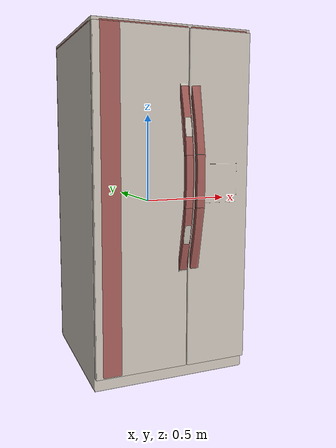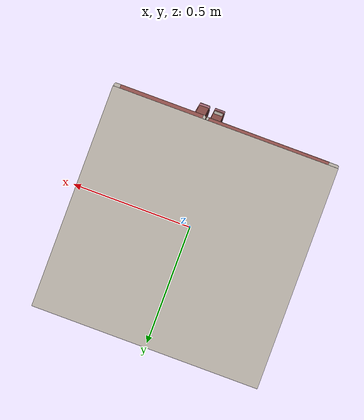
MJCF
<?xml version='1.0' encoding='UTF-8'?>
<mujoco model="model">
  <option timestep="0.002" gravity="0.0 0.0 -9.81"/>
  <compiler angle="radian"/>
  <asset>
    <mesh file="visuals/freezer_door.obj" name="freezer_door_vis"/>
    <mesh file="visuals/freezer_drawer0.obj" name="freezer_drawer0_vis"/>
    <mesh file="visuals/freezer_drawer1.obj" name="freezer_drawer1_vis"/>
    <mesh file="visuals/freezer_drawer2.obj" name="freezer_drawer2_vis"/>
    <mesh file="visuals/fridge_door.obj" name="fridge_door_vis"/>
    <mesh file="visuals/fridge_drawer0.obj" name="fridge_drawer0_vis"/>
    <mesh file="visuals/fridge_drawer1.obj" name="fridge_drawer1_vis"/>
    <mesh file="visuals/fridge_drawer2.obj" name="fridge_drawer2_vis"/>
    <mesh file="visuals/fridge_drawer3.obj" name="fridge_drawer3_vis"/>
    <mesh file="visuals/fridge_drawer4.obj" name="fridge_drawer4_vis"/>
    <mesh file="visuals/Body001.obj" name="Body001_vis"/>
    <mesh file="visuals/Body001_Clear.obj" name="Body001_Clear_vis"/>
    <texture file="visuals/T_BC001.png" name="Body001_material" type="2d"/>
    <material name="Body001_material" rgba="1 1 1 1.0" texture="Body001_material" shininess="0.4472135901451111" specular="1"/>
    <texture file="visuals/T_BC001.png" name="freezer_door_material" type="2d"/>
    <material name="freezer_door_material" rgba="1 1 1 1.0" texture="freezer_door_material" shininess="0.4472135901451111" specular="1"/>
    <texture file="visuals/T_BC001.png" name="freezer_drawer0_material" type="2d"/>
    <material name="freezer_drawer0_material" rgba="1 1 1 1.0" texture="freezer_drawer0_material" shininess="0.4472135901451111" specular="0.3103448502657381"/>
    <texture file="visuals/T_BC001.png" name="freezer_drawer1_material" type="2d"/>
    <material name="freezer_drawer1_material" rgba="1 1 1 1.0" texture="freezer_drawer1_material" shininess="0.4472135901451111" specular="0.3103448502657381"/>
    <texture file="visuals/T_BC001.png" name="freezer_drawer2_material" type="2d"/>
    <material name="freezer_drawer2_material" rgba="1 1 1 1.0" texture="freezer_drawer2_material" shininess="0.4472135901451111" specular="0.3103448502657381"/>
    <texture file="visuals/T_BC001.png" name="fridge_door_material" type="2d"/>
    <material name="fridge_door_material" rgba="1 1 1 1.0" texture="fridge_door_material" shininess="0.4472135901451111" specular="1"/>
    <material name="fridge_drawer0_material" rgba="1.0 1.0 1.0 0.2653976380825043" shininess="0.4472135901451111" specular="0.3103448502657381"/>
    <material name="fridge_drawer1_material" rgba="1.0 1.0 1.0 0.2653976380825043" shininess="0.4472135901451111" specular="0.3103448502657381"/>
    <material name="fridge_drawer2_material" rgba="1.0 1.0 1.0 0.2653976380825043" shininess="0.4472135901451111" specular="0.3103448502657381"/>
    <material name="fridge_drawer3_material" rgba="1.0 1.0 1.0 0.2653976380825043" shininess="0.4472135901451111" specular="0.3103448502657381"/>
    <material name="fridge_drawer4_material" rgba="1.0 1.0 1.0 0.2653976380825043" shininess="0.4472135901451111" specular="0.3103448502657381"/>
    <material name="Body001_Clear_material" rgba="1.0 1.0 1.0 0.2653976380825043" shininess="0.4472135901451111" specular="0.3103448502657381"/>
  </asset>
  <default>
    <default class="visual">
      <geom conaffinity="0" contype="0" group="1" type="mesh"/>
    </default>
    <default class="collision">
      <geom group="0" rgba="0.5 0 0 0.5"/>
    </default>
    <default class="spawn">
      <geom group="0" rgba="1 1 1 0.5" contype="0" conaffinity="0"/>
      <site group="0" rgba="1 1 1 0.5"/>
    </default>
    <default class="region">
      <geom group="1" conaffinity="0" contype="0" rgba="0 1 0 0"/>
    </default>
  </default>
  <worldbody>
    <body>
      <body name="object">
        <geom mesh="Body001_vis" type="mesh" solimp="0.998 0.998 0.001" solref="0.001 1" friction="0.95 0.3 0.1" class="visual" material="Body001_material"/>
        <geom class="collision" type="box" pos="-0.00000003 0.07244694 -0.87347156" size="0.4304637610912323 0.3956150412559509 0.0588507205247879" quat="1.0 0.0 0.0 0.0"/>
        <geom class="collision" type="box" pos="-0.40861815 0.07244785 0.03347566" size="0.021845141425728798 0.395599901676178 0.8861163258552551" quat="1.0 0.0 0.0 0.0"/>
        <geom class="collision" type="box" pos="0.41922861 0.07246298 0.03347566" size="0.011235269717872143 0.39558467268943787 0.8861758708953857" quat="1.0 0.0 0.0 0.0"/>
        <geom class="collision" type="box" pos="0.00422757 0.44963735 0.03726095" size="0.39516299962997437 0.018424177542328835 0.8771956562995911" quat="1.0 0.0 0.0 0.0"/>
        <geom class="collision" type="box" pos="-0.00005763 0.06491915 0.92715174" size="0.42882394790649414 0.40309831500053406 0.005167157854884863" quat="1.0 0.0 0.0 0.0"/>
        <geom class="collision" type="box" pos="0.06976730 0.07117526 0.03347566" size="0.007711742073297501 0.394353449344635 0.8863667249679565" quat="1.0 0.0 0.0 0.0"/>
        <geom class="collision" type="box" pos="-0.16336530 0.08476427 0.17532346" size="0.23660500347614288 0.3807418942451477 0.003616984933614731" quat="1.0 0.0 0.0 0.0"/>
        <geom class="collision" type="box" pos="-0.16336530 0.08476427 -0.09813295" size="0.23661182820796967 0.38075974583625793 0.040179990231990814" quat="1.0 0.0 0.0 0.0"/>
        <geom class="collision" type="box" pos="0.25140142 0.05892735 -0.13335752" size="0.15414109826087952 0.3807351887226105 0.011884043924510479" quat="1.0 0.0 0.0 0.0"/>
        <geom class="collision" type="box" pos="-0.16960494 0.05646115 0.41550559" size="0.21129442751407623 0.3519227206707001 0.01067923754453659" quat="1.0 0.0 0.0 0.0"/>
        <geom class="collision" type="box" pos="0.24783821 0.10986395 0.54615122" size="0.15461844205856323 0.2929384708404541 0.004145659971982241" quat="1.0 0.0 0.0 0.0"/>
        <geom class="collision" type="box" pos="0.25126901 0.10986399 0.20493993" size="0.15199317038059235 0.2910866439342499 0.004145502578467131" quat="1.0 0.0 0.0 0.0"/>
        <geom class="collision" type="box" pos="-0.00354902 0.07651708 0.89048517" size="0.42538413405418396 0.38581550121307373 0.032244957983493805" quat="1.0 0.0 0.0 0.0"/>
        <geom class="collision" type="box" pos="-0.17521077 -0.00168094 -0.35653734" size="0.20460020005702972 0.3087306618690491 0.0006429601344279945" quat="1.0 0.0 0.0 0.0"/>
        <geom class="collision" type="box" pos="-0.17521077 -0.00168094 -0.57321596" size="0.20460020005702972 0.30873045325279236 0.0001045343087753281" quat="1.0 0.0 0.0 0.0"/>
        <geom class="collision" type="box" pos="0.25022644 -0.00168094 -0.59977818" size="0.15879812836647034 0.30873170495033264 0.0016550397267565131" quat="1.0 0.0 0.0 0.0"/>
        <geom class="collision" type="box" pos="0.25022644 -0.00168094 -0.38382816" size="0.1587982475757599 0.30873173475265503 0.001671178499236703" quat="1.0 0.0 0.0 0.0"/>
        <geom class="collision" type="box" pos="-0.17554763 -0.04852468 -0.81352317" size="0.2269284576177597 0.29276221990585327 0.024953356012701988" quat="1.0 0.0 0.0 0.0"/>
        <body name="freezer_door">
          <joint axis="0.0 0.0 1.0" pos="0.41125858 -0.37849856 0.02739461" limited="true" name="freezer_door_joint" range="0.0 1.5707963267948966" type="hinge" damping="1" frictionloss="1" armature=".01" stiffness="0.05"/>
          <geom mesh="freezer_door_vis" type="mesh" solimp="0.998 0.998 0.001" solref="0.001 1" friction="0.95 0.3 0.1" class="visual" material="freezer_door_material"/>
          <geom class="collision" type="box" pos="0.10799358 -0.42213989 0.45491844" size="0.020545627921819687 0.015073212794959545 0.17384988069534302" quat="0.9959166646003723 -0.09027764201164246 5.812459611657523e-18 3.734767511574259e-19" name="freezer_door_handle_1"/>
          <geom class="collision" type="box" pos="0.10799358 -0.42104629 -0.15091255" size="0.020545627921819687 0.015073212794959545 0.16665861010551453" quat="0.9952443242073059 0.09741028398275375 5.640280312793385e-18 1.4530146072651087e-18" name="freezer_door_handle_2"/>
          <geom class="collision" type="box" pos="0.10799358 -0.45493445 0.14793020" size="0.020545581355690956 0.015073142945766449 0.13386665284633636" quat="1.0 0.0 0.0 0.0" name="freezer_door_handle_main"/>
          <geom class="collision" type="box" pos="0.24725594 -0.37833334 0.03077910" size="0.15779338777065277 0.008189450018107891 0.8890061378479004" quat="1.0 0.0 0.0 0.0" name="freezer_door_main"/>
        </body>
        <body name="freezer_drawer0">
          <geom class="region" name="reg_freezer_drawer0" type="box" pos="0.250738735 -0.007979545000000005 -0.6950289350000001" size="0.117325265 0.27091784500000005 0.06638477500000001"/>
          <joint axis="0.0 -1.0 0.0" pos="0.25054911 -0.00831169 -0.70767558" limited="true" name="freezer_drawer0_joint" range="0.0 0.45" type="slide" damping="1" frictionloss="1" armature=".01" stiffness="0.05"/>
          <geom mesh="freezer_drawer0_vis" type="mesh" solimp="0.998 0.998 0.001" solref="0.001 1" friction="0.95 0.3 0.1" class="visual" material="freezer_drawer0_material"/>
          <geom class="collision" type="box" pos="0.25229502 -0.01856448 -0.78834569" size="0.13306231796741486 0.29579514265060425 0.022255269810557365" quat="1.0 0.0 0.0 0.0"/>
          <geom class="collision" type="box" pos="0.37864539 -0.00891570 -0.70721042" size="0.0055981045588850975 0.3054431974887848 0.10118091851472855" quat="1.0 0.0 0.0 0.0"/>
          <geom class="collision" type="box" pos="0.12072334 -0.00891568 -0.70721042" size="0.00732760364189744 0.3054424524307251 0.10118067264556885" quat="1.0 0.0 0.0 0.0"/>
          <geom class="collision" type="box" pos="0.24773729 -0.29905850 -0.72060519" size="0.13345694541931152 0.014037924818694592 0.08960815519094467" quat="1.0 0.0 0.0 0.0"/>
          <geom class="collision" type="box" pos="0.24773729 0.28295066 -0.70721042" size="0.1334570050239563 0.013863825239241123 0.10118020325899124" quat="1.0 0.0 0.0 0.0"/>
          <geom class="collision" type="box" pos="0.16804263 -0.29833872 -0.63085544" size="0.05193275585770607 0.012029588222503662 0.009430548176169395" quat="0.9891068339347839 -3.418605705118806e-15 0.14719928801059723 1.9777544935095648e-08"/>
          <geom class="collision" type="box" pos="0.33302104 -0.29833872 -0.63245958" size="0.05193275585770607 0.012029588222503662 0.009430548176169395" quat="0.985614538192749 -5.7940937238257304e-15 -0.16900873184204102 -2.2707819624656622e-08"/>
        </body>
        <body name="freezer_drawer1">
          <geom class="region" name="reg_freezer_drawer1" type="box" pos="0.250738735 -0.007979545000000005 -0.47893213" size="0.117325265 0.27091784500000005 0.06638476000000001"/>
          <joint axis="0.0 -1.0 0.0" pos="0.25054911 -0.00796666 -0.49253732" limited="true" name="freezer_drawer1_joint" range="0.0 0.45" type="slide" damping="1" frictionloss="1" armature=".01" stiffness="0.05"/>
          <geom mesh="freezer_drawer1_vis" type="mesh" solimp="0.998 0.998 0.001" solref="0.001 1" friction="0.95 0.3 0.1" class="visual" material="freezer_drawer1_material"/>
          <geom class="collision" type="box" pos="0.25035903 -0.01856448 -0.57326460" size="0.13429798185825348 0.29579707980155945 0.022312471643090248" quat="1.0 0.0 0.0 0.0"/>
          <geom class="collision" type="box" pos="0.37939233 -0.00891570 -0.49036545" size="0.006345077883452177 0.30544513463974 0.10118143260478973" quat="1.0 0.0 0.0 0.0"/>
          <geom class="collision" type="box" pos="0.12147030 -0.00891568 -0.49036545" size="0.006580587010830641 0.3054443895816803 0.10118119418621063" quat="1.0 0.0 0.0 0.0"/>
          <geom class="collision" type="box" pos="0.24961606 -0.29905850 -0.50651467" size="0.1333988755941391 0.014037911780178547 0.08765426278114319" quat="1.0 0.0 0.0 0.0"/>
          <geom class="collision" type="box" pos="0.24961606 0.28295078 -0.49036545" size="0.13340258598327637 0.013863880187273026 0.10118072479963303" quat="1.0 0.0 0.0 0.0"/>
          <geom class="collision" type="box" pos="0.33302104 -0.29833872 -0.41739845" size="0.05193275585770607 0.012029588222503662 0.009430548176169395" quat="0.985614538192749 -5.7940937238257304e-15 -0.16900873184204102 -2.2707819624656622e-08"/>
          <geom class="collision" type="box" pos="0.16804263 -0.29833872 -0.41579434" size="0.05193275585770607 0.012029588222503662 0.009430548176169395" quat="0.9891068339347839 -3.418605705118806e-15 0.14719928801059723 1.9777544935095648e-08"/>
        </body>
        <body name="freezer_drawer2">
          <geom class="region" name="reg_freezer_drawer2" type="box" pos="0.250738735 -0.007979545000000005 -0.26260218" size="0.117325265 0.27091784500000005 0.06638478"/>
          <joint axis="0.0 -1.0 0.0" pos="0.25054911 -0.00796666 -0.27639794" limited="true" name="freezer_drawer2_joint" range="0.0 0.45" type="slide" damping="1" frictionloss="1" armature=".01" stiffness="0.05"/>
          <geom mesh="freezer_drawer2_vis" type="mesh" solimp="0.998 0.998 0.001" solref="0.001 1" friction="0.95 0.3 0.1" class="visual" material="freezer_drawer2_material"/>
          <geom class="collision" type="box" pos="0.24770607 0.28295069 -0.29124722" size="0.13339771330356598 0.013863182626664639 0.0890372022986412" quat="1.0 0.0 0.0 0.0"/>
          <geom class="collision" type="box" pos="0.24770607 -0.29905847 -0.28972170" size="0.1334020048379898 0.014037898741662502 0.08554614335298538" quat="1.0 0.0 0.0 0.0"/>
          <geom class="collision" type="box" pos="0.12202056 -0.00891563 -0.27476159" size="0.006030341610312462 0.30544716119766235 0.10350504517555237" quat="1.0 0.0 0.0 0.0"/>
          <geom class="collision" type="box" pos="0.37843734 -0.00891564 -0.27476159" size="0.00539003312587738 0.30544644594192505 0.10350482165813446" quat="1.0 0.0 0.0 0.0"/>
          <geom class="collision" type="box" pos="0.25187901 -0.01856442 -0.35260093" size="0.13306187093257904 0.2957969605922699 0.017787983641028404" quat="1.0 0.0 0.0 0.0"/>
          <geom class="collision" type="box" pos="0.33457136 -0.29833872 -0.20044599" size="0.05210725590586662 0.012029591016471386 0.026185838505625725" quat="1.0 0.0 0.0 0.0"/>
          <geom class="collision" type="box" pos="0.16929151 -0.29833872 -0.19892801" size="0.0524059534072876 0.012029590085148811 0.024144254624843597" quat="1.0 0.0 0.0 0.0"/>
        </body>
        <body name="fridge_door">
          <joint axis="0.0 0.0 -1.0" pos="-0.41614547 -0.37171198 0.02781687" limited="true" name="fridge_door_joint" range="0.0 1.5707963267948966" type="hinge" damping="1" frictionloss="1" armature=".01" stiffness="0.05"/>
          <geom mesh="fridge_door_vis" type="mesh" solimp="0.998 0.998 0.001" solref="0.001 1" friction="0.95 0.3 0.1" class="visual" material="fridge_door_material"/>
          <geom class="collision" type="box" pos="0.04544019 -0.42298672 0.45028567" size="0.020545627921819687 0.015073212794959545 0.17567604780197144" quat="0.9959166646003723 -0.09027764201164246 5.812459611657523e-18 3.734767511574259e-19" name="fridge_door_handle_1"/>
          <geom class="collision" type="box" pos="0.04544019 -0.42097614 -0.15126748" size="0.020545627921819687 0.015073210932314396 0.16911983489990234" quat="0.9952443242073059 0.09741028398275375 5.640280312793385e-18 1.4530146072651087e-18" name="fridge_door_handle_2"/>
          <geom class="collision" type="box" pos="0.04544019 -0.45493445 0.14793020" size="0.020545577630400658 0.015073137357831001 0.13386663794517517" quat="1.0 0.0 0.0 0.0" name="fridge_door_handle_main"/>
          <geom class="collision" type="box" pos="-0.16265643 -0.37758050 0.03347565" size="0.22955015301704407 0.006571865174919367 0.8863381743431091" quat="1.0 0.0 0.0 0.0" name="fridge_door_main"/>
        </body>
        <body name="fridge_drawer0">
          <geom class="region" name="reg_fridge_drawer0" type="box" pos="-0.17480606999999998 -0.008594285000000007 -0.66825548" size="0.1733844 0.27091784500000005 0.06616978000000001"/>
          <joint axis="0.0 -1.0 0.0" pos="-0.17504564 -0.00831169 -0.67909628" limited="true" name="fridge_drawer0_joint" range="0.0 0.45" type="slide" damping="1" frictionloss="1" armature=".01" stiffness="0.05"/>
          <geom mesh="fridge_drawer0_vis" type="mesh" solimp="0.998 0.998 0.001" solref="0.001 1" friction="0.95 0.3 0.1" class="visual" material="fridge_drawer0_material"/>
          <geom class="collision" type="box" pos="-0.17526354 -0.00891567 -0.76087093" size="0.1947074681520462 0.30544930696487427 0.02335994876921177" quat="1.0 0.0 0.0 0.0"/>
          <geom class="collision" type="box" pos="0.01267767 -0.00891567 -0.68661112" size="0.009852822870016098 0.3054485619068146 0.09661044925451279" quat="1.0 0.0 0.0 0.0"/>
          <geom class="collision" type="box" pos="-0.36245143 -0.00891567 -0.68661112" size="0.009158141911029816 0.3054478168487549 0.09661021083593369" quat="1.0 0.0 0.0 0.0"/>
          <geom class="collision" type="box" pos="-0.17514957 -0.29768840 -0.69255406" size="0.19513551890850067 0.012679442763328552 0.09059213101863861" quat="1.0 0.0 0.0 0.0"/>
          <geom class="collision" type="box" pos="-0.17514957 0.28266033 -0.68661112" size="0.19513559341430664 0.01357348170131445 0.09660974144935608" quat="1.0 0.0 0.0 0.0"/>
          <geom class="collision" type="box" pos="-0.03524977 -0.29833872 -0.59694600" size="0.05193275213241577 0.012029588222503662 0.00943054724484682" quat="0.9922551512718201 -6.5854943941373156e-15 -0.12421657890081406 -1.6689606141540025e-08"/>
          <geom class="collision" type="box" pos="-0.30773485 -0.29833872 -0.59762812" size="0.05193274840712547 0.012029588222503662 0.00943054910749197" quat="0.9920896887779236 -2.2518929944500762e-15 0.1255311369895935 1.6866216867583717e-08"/>
        </body>
        <body name="fridge_drawer1">
          <geom class="region" name="reg_fridge_drawer1" type="box" pos="-0.17480606999999998 -0.008594285000000007 -0.45511489" size="0.1733844 0.27091784500000005 0.06206706000000001"/>
          <joint axis="0.0 -1.0 0.0" pos="-0.17504564 -0.00831168 -0.46395811" limited="true" name="fridge_drawer1_joint" range="0.0 0.45" type="slide" damping="1" frictionloss="1" armature=".01" stiffness="0.05"/>
          <geom mesh="fridge_drawer1_vis" type="mesh" solimp="0.998 0.998 0.001" solref="0.001 1" friction="0.95 0.3 0.1" class="visual" material="fridge_drawer1_material"/>
          <geom class="collision" type="box" pos="-0.17514959 0.28280016 -0.46779487" size="0.19513492286205292 0.014015227556228638 0.09975799918174744" quat="1.0 0.0 0.0 0.0"/>
          <geom class="collision" type="box" pos="-0.17514959 -0.29744733 -0.47926727" size="0.19513501226902008 0.012920749373733997 0.08636489510536194" quat="1.0 0.0 0.0 0.0"/>
          <geom class="collision" type="box" pos="-0.36221918 -0.00891567 -0.46464807" size="0.009390406310558319 0.3054497539997101 0.09661072492599487" quat="1.0 0.0 0.0 0.0"/>
          <geom class="collision" type="box" pos="0.01278688 -0.00891567 -0.46464807" size="0.009743595495820045 0.3054490089416504 0.09661048650741577" quat="1.0 0.0 0.0 0.0"/>
          <geom class="collision" type="box" pos="-0.17106414 -0.00891567 -0.55850321" size="0.19470739364624023 0.3054482638835907 0.008594129234552383" quat="1.0 0.0 0.0 0.0"/>
          <geom class="collision" type="box" pos="-0.30773485 -0.29833872 -0.38405535" size="0.05193274840712547 0.012029588222503662 0.00943054910749197" quat="0.9920896887779236 -2.2518929944500762e-15 0.1255311369895935 1.6866216867583717e-08"/>
          <geom class="collision" type="box" pos="-0.03524977 -0.29833872 -0.38337320" size="0.05193275213241577 0.012029588222503662 0.00943054724484682" quat="0.9922551512718201 -6.5854943941373156e-15 -0.12421657890081406 -1.6689606141540025e-08"/>
        </body>
        <body name="fridge_drawer2">
          <geom class="region" name="reg_fridge_drawer2" type="box" pos="-0.17480606999999998 -0.008594285000000007 -0.237246235" size="0.1733844 0.27091784500000005 0.063254705"/>
          <joint axis="0.0 -1.0 0.0" pos="-0.17504564 -0.00796667 -0.24781865" limited="true" name="fridge_drawer2_joint" range="0.0 0.45" type="slide" damping="1" frictionloss="1" armature=".01" stiffness="0.05"/>
          <geom mesh="fridge_drawer2_vis" type="mesh" solimp="0.998 0.998 0.001" solref="0.001 1" friction="0.95 0.3 0.1" class="visual" material="fridge_drawer2_material"/>
          <geom class="collision" type="box" pos="-0.17535956 0.28441837 -0.24910988" size="0.19492459297180176 0.01239717099815607 0.10317104309797287" quat="1.0 0.0 0.0 0.0"/>
          <geom class="collision" type="box" pos="-0.17535956 -0.29833872 -0.26275274" size="0.19492465257644653 0.012029588222503662 0.08953393250703812" quat="1.0 0.0 0.0 0.0"/>
          <geom class="collision" type="box" pos="-0.36245149 -0.00891564 -0.24547902" size="0.009158159606158733 0.3054516613483429 0.09953965991735458" quat="1.0 0.0 0.0 0.0"/>
          <geom class="collision" type="box" pos="0.02102525 -0.00891564 -0.24547899" size="0.0015052473172545433 0.3054509162902832 0.09953941404819489" quat="1.0 0.0 0.0 0.0"/>
          <geom class="collision" type="box" pos="-0.17106414 -0.00891564 -0.34266606" size="0.1947070211172104 0.3054502010345459 0.008997596800327301" quat="1.0 0.0 0.0 0.0"/>
          <geom class="collision" type="box" pos="-0.29626244 -0.29833872 -0.16954002" size="0.05193275213241577 0.012029588222503662 0.009430548176169395" quat="0.9918231964111328 -5.2083047957459695e-15 0.12761953473091125 1.7146815523005898e-08"/>
          <geom class="collision" type="box" pos="-0.05106309 -0.29833872 -0.16916795" size="0.05193275213241577 0.012029588222503662 0.009430548176169395" quat="0.9903227090835571 -3.951238445318913e-15 -0.138783797621727 -1.8646842292469046e-08"/>
        </body>
        <body name="fridge_drawer3">
          <geom class="region" name="reg_fridge_drawer3" type="box" pos="-0.17365725999999998 0.004097469999999992 0.071667285" size="0.18880045 0.2836096 0.09489863500000001"/>
          <joint axis="0.0 -1.0 0.0" pos="-0.17504576 -0.00842516 0.06357863" limited="true" name="fridge_drawer3_joint" range="0.0 0.45" type="slide" damping="1" frictionloss="1" armature=".01" stiffness="0.05"/>
          <geom mesh="fridge_drawer3_vis" type="mesh" solimp="0.998 0.998 0.001" solref="0.001 1" friction="0.95 0.3 0.1" class="visual" material="fridge_drawer3_material"/>
          <geom class="collision" type="box" pos="-0.17106414 -0.00891561 -0.03655959" size="0.19470636546611786 0.3054550588130951 0.005770247895270586" quat="1.0 0.0 0.0 0.0"/>
          <geom class="collision" type="box" pos="0.02102525 -0.00891561 0.06164588" size="0.0015052432427182794 0.3054543435573578 0.10378623753786087" quat="1.0 0.0 0.0 0.0"/>
          <geom class="collision" type="box" pos="-0.37010440 -0.00891561 0.06164585" size="0.0015052438247948885 0.3054535984992981 0.10378599166870117" quat="1.0 0.0 0.0 0.0"/>
          <geom class="collision" type="box" pos="-0.17606108 -0.30803574 0.06164588" size="0.19554020464420319 0.002331118332222104 0.10378577560186386" quat="1.0 0.0 0.0 0.0"/>
          <geom class="collision" type="box" pos="-0.17606108 0.29448255 0.06164588" size="0.19554027915000916 0.0023311125114560127 0.10378553718328476" quat="1.0 0.0 0.0 0.0"/>
        </body>
        <body name="fridge_drawer4">
          <geom class="region" name="reg_fridge_drawer4" type="box" pos="-0.173577685 0.004030814999999993 0.282838795" size="0.18877744500000002 0.283542945 0.07966555499999999"/>
          <joint axis="0.0 -1.0 0.0" pos="-0.17504576 -0.00814063 0.27327278" limited="true" name="fridge_drawer4_joint" range="0.0 0.45" type="slide" damping="1" frictionloss="1" armature=".01" stiffness="0.05"/>
          <geom mesh="fridge_drawer4_vis" type="mesh" solimp="0.998 0.998 0.001" solref="0.001 1" friction="0.95 0.3 0.1" class="visual" material="fridge_drawer4_material"/>
          <geom class="collision" type="box" pos="-0.17472963 0.29448255 0.27721068" size="0.1955537497997284 0.002331150695681572 0.08908568322658539" quat="1.0 0.0 0.0 0.0"/>
          <geom class="collision" type="box" pos="-0.17472963 -0.31053091 0.27721068" size="0.19555382430553436 0.0023311448749154806 0.08908543735742569" quat="1.0 0.0 0.0 0.0"/>
          <geom class="collision" type="box" pos="-0.37010440 -0.00891561 0.27721065" size="0.0015052409144118428 0.3054555058479309 0.0890851691365242" quat="1.0 0.0 0.0 0.0"/>
          <geom class="collision" type="box" pos="0.02102524 -0.00891561 0.27721068" size="0.001505241496488452 0.3054547607898712 0.0890849232673645" quat="1.0 0.0 0.0 0.0"/>
          <geom class="collision" type="box" pos="-0.17106415 -0.00891561 0.19193172" size="0.1947062909603119 0.3054540455341339 0.007545307278633118" quat="1.0 0.0 0.0 0.0"/>
        </body>
        <body name="Body001_Clear">
          <geom mesh="Body001_Clear_vis" type="mesh" solimp="0.998 0.998 0.001" solref="0.001 1" friction="0.95 0.3 0.1" class="visual" material="Body001_Clear_material"/>
        </body>
        <geom class="region" name="reg_freezer_shelf0" type="box" pos="0.24812231 0.067997625 0.039696394999999995" size="0.14638845 0.354399815 0.157135265"/>
        <geom class="region" name="reg_freezer_shelf1" type="box" pos="0.24847813000000002 0.113857815 0.37535915" size="0.14674428 0.287013435 0.16236351000000002"/>
        <geom class="region" name="reg_freezer_shelf2" type="box" pos="0.24796447 0.11502860000000001 0.7038880000000001" size="0.14768298000000002 0.28448966 0.14993901000000004"/>
        <geom class="region" name="reg_fridge_shelf0" type="box" pos="-0.180734365 0.06302706000000002 0.64300582" size="0.200879085 0.36386594 0.21145014"/>
        <geom class="region" name="reg_main" type="box" pos="-9.999999994736442e-09 0.040539615 0.0" size="0.43146382 0.42853824500000004 0.93332012"/>
      </body>
    </body>
  </worldbody>
  <actuator>
    <motor name="freezer_door_joint_actuator" joint="freezer_door_joint" gear="50"/>
    <motor name="freezer_drawer0_joint_actuator" joint="freezer_drawer0_joint" gear="50"/>
    <motor name="freezer_drawer1_joint_actuator" joint="freezer_drawer1_joint" gear="50"/>
    <motor name="freezer_drawer2_joint_actuator" joint="freezer_drawer2_joint" gear="50"/>
    <motor name="fridge_door_joint_actuator" joint="fridge_door_joint" gear="50"/>
    <motor name="fridge_drawer0_joint_actuator" joint="fridge_drawer0_joint" gear="50"/>
    <motor name="fridge_drawer1_joint_actuator" joint="fridge_drawer1_joint" gear="50"/>
    <motor name="fridge_drawer2_joint_actuator" joint="fridge_drawer2_joint" gear="50"/>
    <motor name="fridge_drawer3_joint_actuator" joint="fridge_drawer3_joint" gear="50"/>
    <motor name="fridge_drawer4_joint_actuator" joint="fridge_drawer4_joint" gear="50"/>
  </actuator>
</mujoco>
